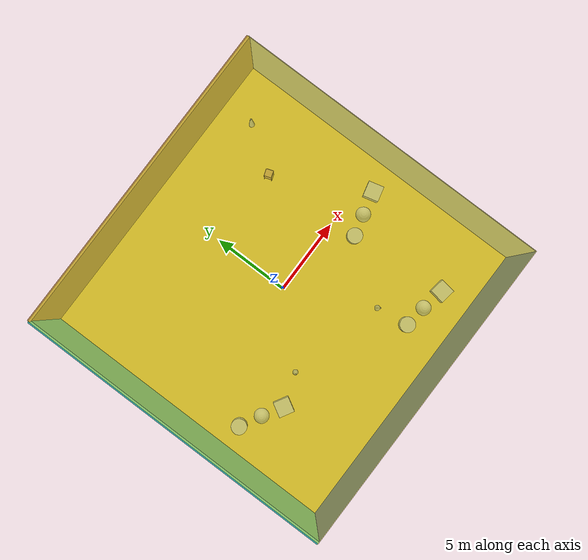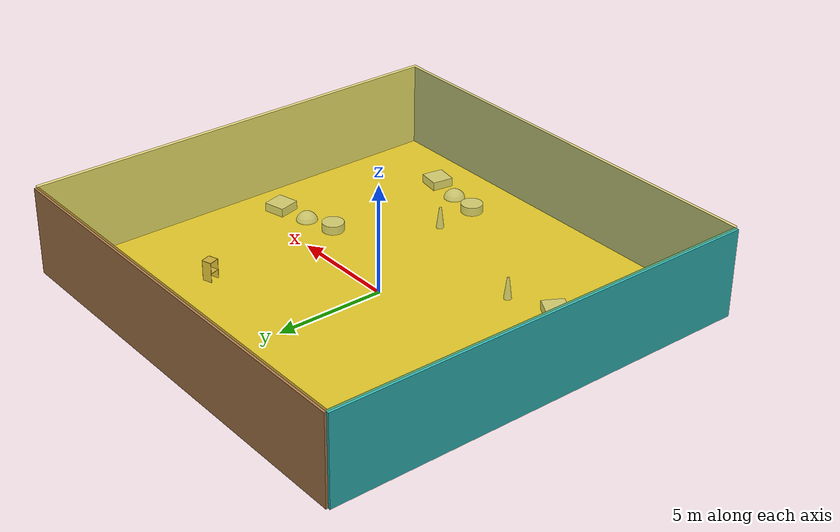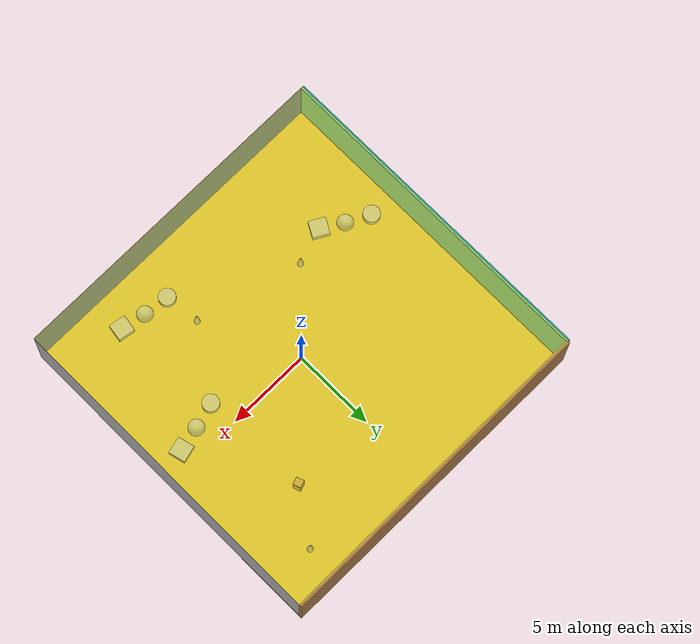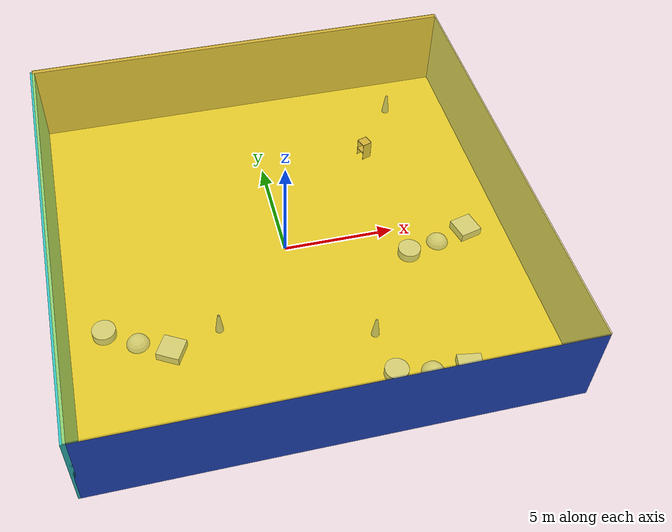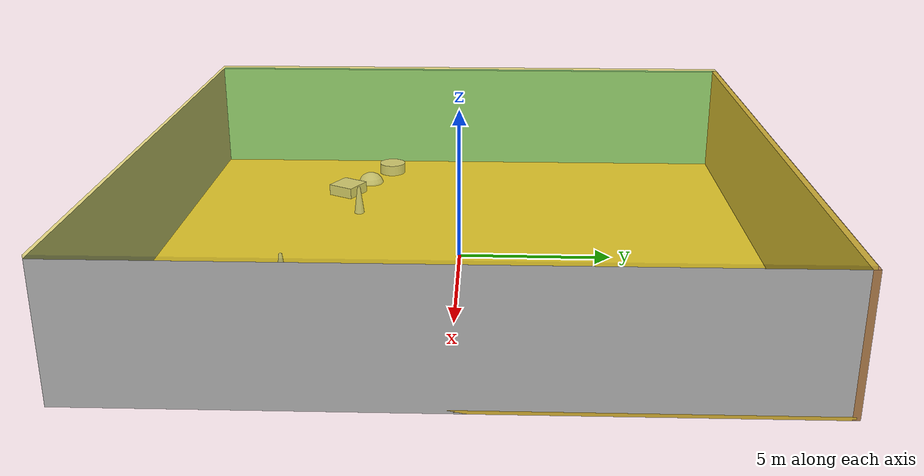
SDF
<sdf version="1.4">
 <world name="default">
  <physics type="ode">
   <max_step_size>0.001</max_step_size>
   <real_time_factor>1</real_time_factor>
   <real_time_update_rate>1000</real_time_update_rate>
   <gravity>0 0 -9.8</gravity>
  </physics>
  <scene><ambient>0.4 0.4 0.4 1</ambient><background>0.7 0.7 0.7 1</background><shadows>1</shadows></scene>
  <model name="Surrounding">
   <static>1</static>
   <link name="Ceiling">
    <collision name="Ceiling_Collision"><geometry><box><size>20 20 0.1</size></box></geometry></collision>
    <visual name="Ceiling_Visual">
     <geometry><box><size>20 20 0.1</size></box></geometry>
     <material>
      <script>
       <uri>file://media/materials/scripts/gazebo.material</uri>
       <name>Gazebo/YellowTransparent</name>
      </script>
     </material>
    </visual>
    <pose>0 0 4.05 0 0 0</pose>
   </link>
   <link name="Wall_South">
    <collision name="Wall_South_Collision">
     <geometry><box><size>20 0 4</size></box></geometry>
     <pose>0 0 2 0 -0 0</pose>
    </collision>
    <visual name="Wall_South_Visual">
     <pose>0 0 2 0 -0 0</pose>
     <geometry><box><size>20 0 4</size></box></geometry>
     <material>
      <script><uri>file://media/materials/scripts/gazebo.material</uri><name>Gazebo/Blue</name></script>
     </material>
    </visual>
    <velocity_decay><linear>0</linear><angular>0</angular></velocity_decay>
    <pose>0 -10 0 0 -0 0</pose>
   </link>
   <link name="Wall_East">
    <collision name="Wall_21_Collision">
     <geometry><box><size>20 0 4</size></box></geometry>
     <pose>0 0 2 0 -0 0</pose>
    </collision>
    <visual name="Wall_21_Visual">
     <pose>0 0 2 0 -0 0</pose>
     <geometry><box><size>20 0 4</size></box></geometry>
     <material>
      <script><uri>file://media/materials/scripts/gazebo.material</uri><name>Gazebo/PioneerBody</name></script>
     </material>
    </visual>
    <velocity_decay><linear>0</linear><angular>0</angular></velocity_decay>
    <pose>10 0 0 0 -0 1.5708</pose>
   </link>
   <link name="Wall_North">
    <collision name="Wall_22_Collision">
     <geometry><box><size>20 0.2 4</size></box></geometry>
     <pose>0 0 2 0 -0 0</pose>
    </collision>
    <visual name="Wall_22_Visual">
     <pose>0 0 2 0 -0 0</pose>
     <geometry><box><size>20 0.2 4</size></box></geometry>
     <material>
      <script><uri>file://media/materials/scripts/gazebo.material</uri><name>Gazebo/WoodPallet</name></script>
     </material>
    </visual>
    <velocity_decay><linear>0</linear><angular>0</angular></velocity_decay>
    <pose>0 10 0 0 -0 0</pose>
   </link>
   <link name="Wall_West">
    <collision name="Wall_23_Collision">
     <geometry><box><size>20 0.2 4</size></box></geometry>
     <pose>0 0 2 0 -0 0</pose>
    </collision>
    <visual name="Wall_23_Visual">
     <pose>0 0 2 0 -0 0</pose>
     <geometry><box><size>20 0.2 4</size></box></geometry>
     <material>
      <script>
       <uri>file://media/materials/scripts/gazebo.material</uri>
       <name>Gazebo/TurquoiseGlowOutline</name>
      </script>
     </material>
    </visual>
    <velocity_decay><linear>0</linear><angular>0</angular></velocity_decay>
    <pose>-10 0 0 0 0 -1.5708</pose>
   </link>
   <link name="Ground_link">
    <collision name="collision">
     <pose>0 0 .05 0 -0 0</pose>
     <geometry><box><size>20 20 0.1</size></box></geometry>
    </collision>
    <visual name="visual">
     <pose>0 0 .05 0 -0 0</pose>
     <geometry><box><size>20 20 0.1</size></box></geometry>
     <material>
      <script><uri>file://media/materials/scripts/gazebo.material</uri><name>Gazebo/Gold</name></script>
     </material>
    </visual>
   </link>
   <static>1</static>
  </model>
  <spherical_coordinates>
   <surface_model>EARTH_WGS84</surface_model>
   <latitude_deg>0</latitude_deg>
   <longitude_deg>0</longitude_deg>
   <elevation>0</elevation>
   <heading_deg>0</heading_deg>
  </spherical_coordinates>
  <light name="lightball_0" type="diffuse">
   <diffuse>0.8 0.8 0.8 1</diffuse>
   <specular>0.2 0.2 0.2 1</specular>
   <attenuation>
    <range>100</range>
    <constant>0.7</constant>
    <linear>0.01</linear>
    <quadratic>0.001</quadratic>
   </attenuation>
   <direction>-0.5 0.1 -0.9</direction>
   <pose>7.32296897498 0.448510309716 3.54491544071 0 0 0</pose>
  </light>
  <light name="lightball_1" type="diffuse">
   <diffuse>0.8 0.8 0.8 1</diffuse>
   <specular>0.2 0.2 0.2 1</specular>
   <attenuation>
    <range>100</range>
    <constant>0.7</constant>
    <linear>0.01</linear>
    <quadratic>0.001</quadratic>
   </attenuation>
   <direction>-0.5 0.1 -0.9</direction>
   <pose>7.0536363744 -8.2443509123 1.09451040163 0 0 0</pose>
  </light>
  <light name="lightball_2" type="diffuse">
   <diffuse>0.8 0.8 0.8 1</diffuse>
   <specular>0.2 0.2 0.2 1</specular>
   <attenuation>
    <range>100</range>
    <constant>0.7</constant>
    <linear>0.01</linear>
    <quadratic>0.001</quadratic>
   </attenuation>
   <direction>-0.5 0.1 -0.9</direction>
   <pose>2.70137267289 -1.78196369778 3.06490173798 0 0 0</pose>
  </light>
  <light name="lightball_3" type="diffuse">
   <diffuse>0.8 0.8 0.8 1</diffuse>
   <specular>0.2 0.2 0.2 1</specular>
   <attenuation>
    <range>100</range>
    <constant>0.7</constant>
    <linear>0.01</linear>
    <quadratic>0.001</quadratic>
   </attenuation>
   <direction>-0.5 0.1 -0.9</direction>
   <pose>2.85811651442 7.12008286918 3.46054669559 0 0 0</pose>
  </light>
  <light name="lightball_4" type="diffuse">
   <diffuse>0.8 0.8 0.8 1</diffuse>
   <specular>0.2 0.2 0.2 1</specular>
   <attenuation>
    <range>100</range>
    <constant>0.7</constant>
    <linear>0.01</linear>
    <quadratic>0.001</quadratic>
   </attenuation>
   <direction>-0.5 0.1 -0.9</direction>
   <pose>1.99360784737 9.82231887394 3.75682277453 0 0 0</pose>
  </light>
  <include>
   <uri>model://textured_shapes</uri>
   <pose>-7.11424293652 -3.74705593062 0 0 0 1.05824078604</pose>
  </include>
  <include>
   <uri>model://construction_cone</uri>
   <pose>-3.7000841876 -3.79669152221 0 0 0 2.69979042158</pose>
  </include>
  <include>
   <uri>model://construction_cone</uri>
   <pose>2.59174071325 -5.45884172386 0 0 0 0.161184375733</pose>
  </include>
  <include>
   <uri>model://textured_shapes</uri>
   <pose>4.33936268868 -7.76228780463 0 0 0 1.4134759975</pose>
  </include>
  <include><uri>model://cabinet</uri><pose>5.07816971678 4.92053501191 0 0 0 0.322698328891</pose></include>
  <include>
   <uri>model://textured_shapes</uri>
   <pose>6.75765268696 -1.23889592914 0 0 0 1.81811124105</pose>
  </include>
  <include>
   <uri>model://construction_cone</uri>
   <pose>7.06257957273 7.79517878851 0 0 0 2.5940332606</pose>
  </include>
 </world>
</sdf>

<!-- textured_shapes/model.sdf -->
<sdf version="1.6">
  <model name="textured_shapes">
    <pose>0 0 0.5 0 0 0</pose>
    <link name="box">
      <pose>0 -1.5 0 0 0 0</pose>
      <collision name="collision">
        <geometry>
          <box>
            <size>1 1 1</size>
          </box>
        </geometry>
      </collision>
      <visual name="visual">
        <geometry>
          <box>
            <size>1 1 1</size>
          </box>
        </geometry>
        <material>
          <script>
            <uri>model://../model_source/models/textured_shapes/materials/scripts</uri>
            <uri>model://../model_source/models/textured_shapes/materials/textures</uri>
            <name>TexturedShape/Squares</name>
          </script>
        </material>
      </visual>
    </link>
    <link name="sphere">
      <collision name="collision">
        <geometry>
          <sphere>
            <radius>0.5</radius>
          </sphere>
        </geometry>
      </collision>
      <visual name="visual">
        <geometry>
          <sphere>
            <radius>0.5</radius>
          </sphere>
        </geometry>
        <material>
          <script>
            <uri>model://../model_source/models/textured_shapes/materials/scripts</uri>
            <uri>model://../model_source/models/textured_shapes/materials/textures</uri>
            <name>TexturedShape/Squares</name>
          </script>
        </material>
      </visual>
    </link>
    <link name="cylinder">
      <pose>0 1.5 0 0 0 0</pose>
      <collision name="collision">
        <geometry>
          <cylinder>
            <radius>0.5</radius>
            <length>1</length>
          </cylinder>
        </geometry>
      </collision>
      <visual name="visual">
        <geometry>
          <cylinder>
            <radius>0.5</radius>
            <length>1</length>
          </cylinder>
        </geometry>
        <material>
          <script>
            <uri>model://../model_source/models/textured_shapes/materials/scripts</uri>
            <uri>model://../model_source/models/textured_shapes/materials/textures</uri>
            <name>TexturedShape/Squares</name>
          </script>
        </material>
      </visual>
    </link>
  </model>
</sdf>

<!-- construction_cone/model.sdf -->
<sdf version="1.5">
  <model name="Construction Cone">
    <link name="link">
      <collision name="collision">
        <geometry>
          <mesh>
            <scale>10 10 10</scale>
            <uri>file://isr-testbed/construction_cone/meshes/construction_cone.dae</uri>
          </mesh>
        </geometry>
      </collision>
      <visual name="visual">
        <geometry>
          <mesh>
            <scale>10 10 10</scale>
            <uri>file://isr-testbed/construction_cone/meshes/construction_cone.dae</uri>
          </mesh>
        </geometry>
      </visual>
    </link>
  </model>
</sdf>

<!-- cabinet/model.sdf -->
<sdf version="1.5">
  <model name="cabinet">
    <static>true</static>
    <link name="cabinet_bottom_plate">
      <inertial>
        <pose>0 0 -1 0 0 0</pose>
        <inertia>
          <ixx>2.050000</ixx>
          <ixy>0</ixy>
          <ixz>0</ixz>
          <iyy>2.050000</iyy>
          <iyz>0</iyz>
          <izz>2.050000</izz>
        </inertia>
        <mass>25.000000</mass>
      </inertial>
      <collision name="cabinet_bottom_plate_geom">
        <pose>0 0 0.010000 0 0 0</pose>
        <geometry>
          <box>
            <size>0.450000 0.450000 0.020000</size>
          </box>
        </geometry>
      </collision>
      <visual name="cabinet_bottom_plate_geom_visual">
        <pose>0 0 0.010000 0 0 0</pose>
        <geometry>
          <box>
            <size>0.450000 0.450000 0.020000</size>
          </box>
        </geometry>
        <material>
          <script>
            <uri>model://media/materials/scripts/gazebo.material</uri>
            <name>Gazebo/Wood</name>
          </script>
        </material>
      </visual>
      <collision name="cabinet_bottom_plate_geom_cabinet_back_plate">
        <pose>0.235000 0 0.510000 0 0 0</pose>
        <geometry>
          <box>
            <size>0.020000 0.450000 1.020000</size>
          </box>
        </geometry>
      </collision>
      <visual name="cabinet_bottom_plate_geom_cabinet_back_plate_visual">
        <pose>0.235000 0 0.510000 0 0 0</pose>
        <geometry>
          <box>
            <size>0.020000 0.450000 1.020000</size>
          </box>
        </geometry>
        <material>
          <script>
            <uri>model://media/materials/scripts/gazebo.material</uri>
            <name>Gazebo/Wood</name>
          </script>
        </material>
      </visual>
      <collision name="cabinet_bottom_plate_geom_cabinet_left_plate">
        <pose>0 0.235000 0.510000 0 0 0</pose>
        <geometry>
          <box>
            <size>0.450000 0.020000 1.020000</size>
          </box>
        </geometry>
      </collision>
      <visual name="cabinet_bottom_plate_geom_cabinet_left_plate_visual">
        <pose>0 0.235000 0.510000 0 0 0</pose>
        <geometry>
          <box>
            <size>0.450000 0.020000 1.020000</size>
          </box>
        </geometry>
        <material>
          <script>
            <uri>model://media/materials/scripts/gazebo.material</uri>
            <name>Gazebo/Wood</name>
          </script>
        </material>
      </visual>
      <collision name="cabinet_bottom_plate_geom_cabinet_middle_plate">
        <pose>0 0 0.510000 0 0 0</pose>
        <geometry>
          <box>
            <size>0.450000 0.450000 0.020000</size>
          </box>
        </geometry>
      </collision>
      <visual name="cabinet_bottom_plate_geom_cabinet_middle_plate_visual">
        <pose>0 0 0.510000 0 0 0</pose>
        <geometry>
          <box>
            <size>0.450000 0.450000 0.020000</size>
          </box>
        </geometry>
        <material>
          <script>
            <uri>model://media/materials/scripts/gazebo.material</uri>
            <name>Gazebo/Wood</name>
          </script>
        </material>
      </visual>
      <collision name="cabinet_bottom_plate_geom_cabinet_right_plate">
        <pose>0 -0.235000 0.510000 0 0 0</pose>
        <geometry>
          <box>
            <size>0.450000 0.020000 1.020000</size>
          </box>
        </geometry>
      </collision>
      <visual name="cabinet_bottom_plate_geom_cabinet_right_plate_visual">
        <pose>0 -0.235000 0.510000 0 0 0</pose>
        <geometry>
          <box>
            <size>0.450000 0.020000 1.020000</size>
          </box>
        </geometry>
        <material>
          <script>
            <uri>model://media/materials/scripts/gazebo.material</uri>
            <name>Gazebo/Wood</name>
          </script>
        </material>
      </visual>
      <collision name="cabinet_bottom_plate_geom_cabinet_top_plate">
        <pose>0 0 1.010000 0 0 0</pose>
        <geometry>
          <box>
            <size>0.450000 0.450000 0.020000</size>
          </box>
        </geometry>
      </collision>
      <visual name="cabinet_bottom_plate_geom_cabinet_top_plate_visual">
        <pose>0 0 1.010000 0 0 0</pose>
        <geometry>
          <box>
            <size>0.450000 0.450000 0.020000</size>
          </box>
        </geometry>
        <material>
          <script>
            <uri>model://media/materials/scripts/gazebo.material</uri>
            <name>Gazebo/Wood</name>
          </script>
        </material>
      </visual>
    </link>
  </model>
</sdf>
